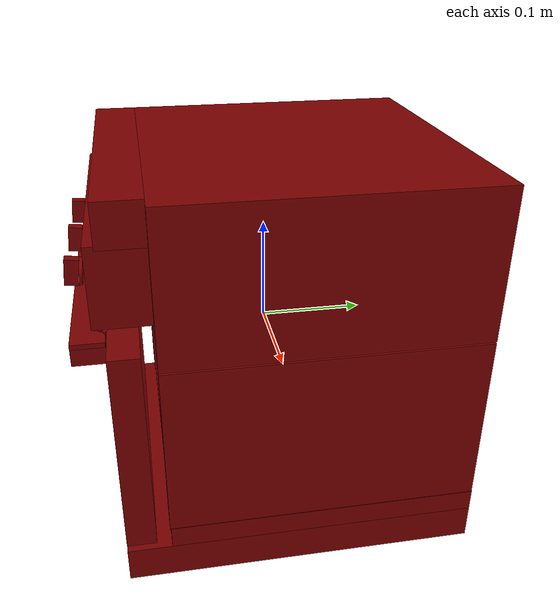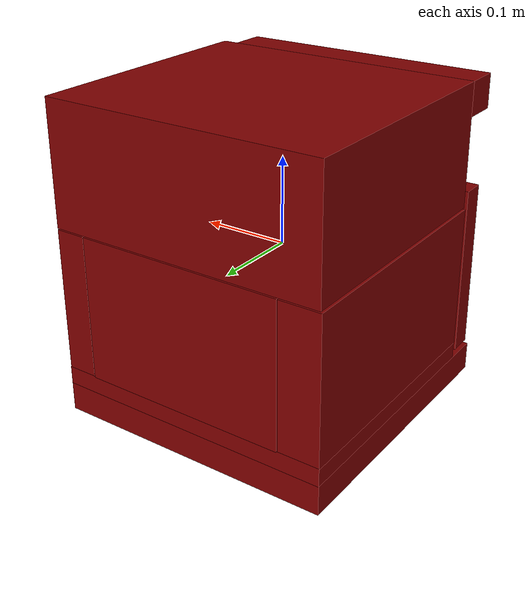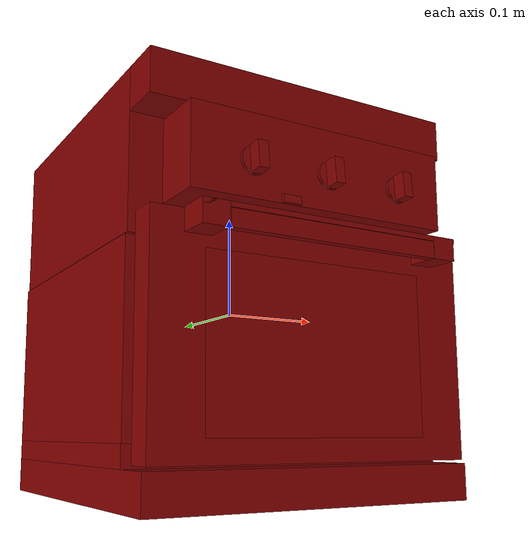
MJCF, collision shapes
<?xml version='1.0' encoding='UTF-8'?>
<mujoco model="model">
  <option timestep="0.002" gravity="0.0 0.0 -9.81"/>
  <compiler angle="radian"/>
  <asset>
    <mesh file="visuals/door.obj" name="door_vis"/>
    <mesh file="visuals/knob_function.obj" name="knob_function_vis"/>
    <mesh file="visuals/knob_temp.obj" name="knob_temp_vis"/>
    <mesh file="visuals/knob_time.obj" name="knob_time_vis"/>
    <mesh file="visuals/Body001.obj" name="Body001_vis"/>
    <mesh file="visuals/Button001.obj" name="Button001_vis"/>
    <mesh file="visuals/tray0.obj" name="tray0_vis"/>
    <mesh file="visuals/tray1.obj" name="tray1_vis"/>
    <mesh file="visuals/window.obj" name="window_vis"/>
    <texture file="visuals/T_BC001.png" name="Body001_material" type="2d"/>
    <material name="Body001_material" rgba="1 1 1 1.0" texture="Body001_material" shininess="0.46335369348526" specular="1"/>
    <texture file="visuals/T_BC001.png" name="door_material" type="2d"/>
    <material name="door_material" rgba="1 1 1 1.0" texture="door_material" shininess="0.46335369348526" specular="1"/>
    <texture file="visuals/T_BC001.png" name="window_material" type="2d"/>
    <material name="window_material" rgba="1 1 1 0.800000011920929" texture="window_material" shininess="0.46335369348526" specular="0.3103448502657381"/>
    <texture file="visuals/T_BC001.png" name="knob_function_material" type="2d"/>
    <material name="knob_function_material" rgba="1 1 1 1.0" texture="knob_function_material" shininess="0.46335369348526" specular="0.3103448502657381"/>
    <texture file="visuals/T_BC001.png" name="knob_temp_material" type="2d"/>
    <material name="knob_temp_material" rgba="1 1 1 1.0" texture="knob_temp_material" shininess="0.46335369348526" specular="0.3103448502657381"/>
    <texture file="visuals/T_BC001.png" name="knob_time_material" type="2d"/>
    <material name="knob_time_material" rgba="1 1 1 1.0" texture="knob_time_material" shininess="0.46335369348526" specular="0.3103448502657381"/>
    <texture file="visuals/T_BC001.png" name="Button001_material" type="2d"/>
    <material name="Button001_material" rgba="1 1 1 1.0" texture="Button001_material" shininess="0.46335369348526" specular="0.3103448502657381"/>
    <texture file="visuals/T_BC001.png" name="tray0_material" type="2d"/>
    <material name="tray0_material" rgba="1 1 1 1.0" texture="tray0_material" shininess="0.46335369348526" specular="2"/>
    <texture file="visuals/T_BC001.png" name="tray1_material" type="2d"/>
    <material name="tray1_material" rgba="1 1 1 1.0" texture="tray1_material" shininess="0.46335369348526" specular="2"/>
  </asset>
  <default>
    <default class="visual">
      <geom conaffinity="0" contype="0" group="1" type="mesh"/>
    </default>
    <default class="collision">
      <geom group="0" rgba="0.5 0 0 0.5"/>
    </default>
    <default class="spawn">
      <geom group="0" rgba="1 1 1 0.5" contype="0" conaffinity="0"/>
      <site group="0" rgba="1 1 1 0.5"/>
    </default>
    <default class="region">
      <geom group="1" conaffinity="0" contype="0" rgba="0 1 0 0"/>
    </default>
  </default>
  <worldbody>
    <body>
      <body name="object">
        <geom mesh="Body001_vis" type="mesh" solimp="0.998 0.998 0.001" solref="0.001 1" friction="0.95 0.3 0.1" class="visual" material="Body001_material"/>
        <geom class="collision" type="box" pos="0.00078029 0.03034528 0.10992454" size="0.16061262786388397 0.14468668401241302 0.07012715935707092" quat="1.0 0.0 0.0 0.0"/>
        <geom class="collision" type="box" pos="-0.13757669 0.03034528 -0.04454038" size="0.023752188310027122 0.14468680322170258 0.08284152299165726" quat="1.0 0.0 0.0 0.0"/>
        <geom class="collision" type="box" pos="0.14396730 0.03034528 -0.04454038" size="0.01742841675877571 0.14468692243099213 0.08284163475036621" quat="1.0 0.0 0.0 0.0"/>
        <geom class="collision" type="box" pos="0.00028833 0.01047281 -0.16351908" size="0.16161368787288666 0.16455745697021484 0.01666220836341381" quat="1.0 0.0 0.0 0.0"/>
        <geom class="collision" type="box" pos="0.00649370 0.14017999 -0.04454038" size="0.11938327550888062 0.034853868186473846 0.08284186571836472" quat="1.0 0.0 0.0 0.0"/>
        <geom class="collision" type="box" pos="0.00054549 -0.13950110 0.10350221" size="0.12980136275291443 0.025302764028310776 0.03628600016236305" quat="1.0 0.0 0.0 0.0"/>
        <geom class="collision" type="box" pos="-0.00815829 -0.13461963 0.16078655" size="0.15167491137981415 0.02042132057249546 0.01926562935113907" quat="1.0 0.0 0.0 0.0"/>
        <geom class="collision" type="box" pos="0.00028833 0.03082720 -0.13647698" size="0.16161461174488068 0.14420557022094727 0.010471759364008904" quat="1.0 0.0 0.0 0.0"/>
        <body name="door">
          <joint axis="1.0 0.0 0.0" pos="0.00000199 -0.15372463 -0.14399529" limited="true" name="door_joint" range="0.0 1.5707963267948966" type="hinge" damping="1" frictionloss="1" armature=".01" stiffness="0.05"/>
          <geom mesh="door_vis" type="mesh" solimp="0.998 0.998 0.001" solref="0.001 1" friction="0.95 0.3 0.1" class="visual" material="door_material"/>
          <geom class="collision" type="box" pos="0.00011840 -0.14062062 -0.04493511" size="0.1581307053565979 0.013554764911532402 0.09866102039813995" quat="1.0 0.0 0.0 0.0" name="door_main"/>
          <geom class="collision" type="box" pos="0.00016541 -0.16957534 0.05221285" size="0.12886156141757965 0.014577762223780155 0.0022435584105551243" quat="1.0 0.0 0.0 0.0" name="door_main_Collider1"/>
          <geom class="collision" type="box" pos="0.00016541 -0.18038807 0.04180697" size="0.1040680930018425 0.0037650971207767725 0.007730062585324049" quat="1.0 0.0 0.0 0.0" name="door_handle_main"/>
          <geom class="collision" type="box" pos="-0.11665465 -0.16940965 0.04426667" size="0.012041750364005566 0.01474347896873951 0.0101897232234478" quat="1.0 0.0 0.0 0.0" name="door_main_Collider2"/>
          <geom class="collision" type="box" pos="0.11645973 -0.16940965 0.04426667" size="0.012041754089295864 0.014743483625352383 0.010189726017415524" quat="1.0 0.0 0.0 0.0" name="door_main_Collider3"/>
          <body name="window">
            <geom mesh="window_vis" type="mesh" solimp="0.998 0.998 0.001" solref="0.001 1" friction="0.95 0.3 0.1" class="visual" material="window_material"/>
            <geom class="collision" type="box" pos="0.00052248 -0.15170745 -0.04956922" size="0.11034322530031204 0.002468056045472622 0.07375499606132507" quat="1.0 0.0 0.0 0.0"/>
          </body>
        </body>
        <body name="knob_function">
          <joint axis="0.0 0.9959583282470703 -0.08981510996818542" pos="0.00002166 -0.17655875 0.09638795" limited="true" name="knob_function_joint" range="0.0 5.410520681182422" type="hinge" damping="0.05" armature="1" frictionloss="0.75"/>
          <geom mesh="knob_function_vis" type="mesh" solimp="0.998 0.998 0.001" solref="0.001 1" friction="0.95 0.3 0.1" class="visual" material="knob_function_material"/>
          <geom class="collision" type="cylinder" pos="0.00005778 -0.17156436 0.09587450" size="0.012114203535020351 0.0014273510314524174" quat="0.7384907603263855 0.674263596534729 0.0 0.0" friction="100 0.5 0.01"/>
          <geom class="collision" type="box" pos="0.00000250 -0.17914841 0.09667914" size="0.004723309073597193 0.006342465057969093 0.011634760536253452" quat="0.9989585280418396 -0.04562760144472122 -0.0 0.0" name="knob_function_main" friction="100 0.5 0.01"/>
        </body>
        <body name="knob_temp">
          <joint axis="0.0 0.9961931109428406 -0.08717270940542221" pos="-0.07522880 -0.17655875 0.09638795" limited="true" name="knob_temp_joint" range="0.0 4.71238898038469" type="hinge" damping="0.05" armature="1" frictionloss="0.75"/>
          <geom mesh="knob_temp_vis" type="mesh" solimp="0.998 0.998 0.001" solref="0.001 1" friction="0.95 0.3 0.1" class="visual" material="knob_temp_material"/>
          <geom class="collision" type="cylinder" pos="-0.07511960 -0.17156044 0.09587414" size="0.012214718386530876 0.0014650241937488317" quat="0.7384907603263855 0.674263596534729 0.0 0.0" friction="100 0.5 0.01"/>
          <geom class="collision" type="box" pos="-0.07507640 -0.17914841 0.09667914" size="0.004723309073597193 0.006342465057969093 0.011634760536253452" quat="0.9989585280418396 -0.04562760144472122 -0.0 0.0" name="knob_temp_main" friction="100 0.5 0.01"/>
        </body>
        <body name="knob_time">
          <joint axis="0.0 0.9960722327232361 -0.08854477107524872" pos="0.07505980 -0.17655875 0.09638795" limited="true" name="knob_time_joint" range="0.0 4.799655442984406" type="hinge" damping="0.05" armature="1" frictionloss="0.75"/>
          <geom mesh="knob_time_vis" type="mesh" solimp="0.998 0.998 0.001" solref="0.001 1" friction="0.95 0.3 0.1" class="visual" material="knob_time_material"/>
          <geom class="collision" type="cylinder" pos="0.07513966 -0.17161981 0.09587954" size="0.012140058912336826 0.0014937188243493438" quat="0.7384907603263855 0.674263596534729 0.0 0.0" friction="100 0.5 0.01"/>
          <geom class="collision" type="box" pos="0.07499157 -0.17914841 0.09667914" size="0.004723309073597193 0.006342465057969093 0.011634760536253452" quat="0.9989585280418396 -0.04562760144472122 -0.0 0.0" name="knob_time_main" friction="100 0.5 0.01"/>
        </body>
        <body name="Button001">
          <joint axis="0.0 0.9974946975708008 -0.07074242830276489" pos="-0.03932423 -0.17125057 0.06900705" limited="true" name="Button001_joint" range="0.0 0.001" type="slide" damping="1" frictionloss="1" armature=".01" stiffness="4" springref="0"/>
          <geom mesh="Button001_vis" type="mesh" solimp="0.998 0.998 0.001" solref="0.001 1" friction="0.95 0.3 0.1" class="visual" material="Button001_material"/>
          <geom class="collision" type="box" pos="-0.03936762 -0.17131779 0.06908934" size="0.008868260309100151 0.0014868775615468621 0.0035575367510318756" quat="0.9989315271377563 -0.04621448367834091 -0.0 0.0"/>
        </body>
        <body name="tray0">
          <geom class="region" name="reg_tray0" type="box" pos="0.006110945 0.0003158849999999949 -0.06361481" size="0.09979643499999999 0.08337826500000001 0.03230869"/>
          <joint axis="0.0 -1.0 0.0" pos="0.00573062 -0.00245265 -0.09740890" limited="true" name="tray0_joint" range="0.0 0.16" type="slide" damping="1" frictionloss="1" armature=".01" stiffness="0.05"/>
          <geom mesh="tray0_vis" type="mesh" solimp="0.998 0.998 0.001" solref="0.001 1" friction="0.95 0.3 0.1" class="visual" material="tray0_material"/>
          <geom class="collision" type="box" pos="0.11749809 -0.00239633 -0.09286333" size="0.006142429541796446 0.10547813028097153 0.004033310804516077" quat="1.0 0.0 0.0 0.0"/>
          <geom class="collision" type="box" pos="0.00564370 0.00119438 -0.09994216" size="0.10874977707862854 0.09062684327363968 0.0030033981893211603" quat="1.0 0.0 0.0 0.0"/>
          <geom class="collision" type="box" pos="-0.10621006 -0.00239633 -0.09286333" size="0.006142433267086744 0.10547823458909988 0.004033314064145088" quat="1.0 0.0 0.0 0.0"/>
          <geom class="collision" type="box" pos="0.00678328 0.09510623 -0.09286333" size="0.11399798840284348 0.006451786030083895 0.004033319652080536" quat="1.0 0.0 0.0 0.0"/>
          <geom class="collision" type="box" pos="0.00678329 -0.09733227 -0.09286333" size="0.11399801820516586 0.010087694972753525 0.004033319652080536" quat="1.0 0.0 0.0 0.0"/>
        </body>
        <body name="tray1">
          <geom class="region" name="reg_tray1" type="box" pos="0.006110945 0.00031593499999999636 0.009766375" size="0.09979643499999999 0.08337826500000001 0.030403815"/>
          <joint axis="0.0 -1.0 0.0" pos="0.00573062 -0.00245265 -0.02214345" limited="true" name="tray1_joint" range="0.0 0.16" type="slide" damping="1" frictionloss="1" armature=".01" stiffness="0.05"/>
          <geom mesh="tray1_vis" type="mesh" solimp="0.998 0.998 0.001" solref="0.001 1" friction="0.95 0.3 0.1" class="visual" material="tray1_material"/>
          <geom class="collision" type="box" pos="0.11749809 -0.00239633 -0.01757246" size="0.006142435595393181 0.10547830164432526 0.004033316392451525" quat="1.0 0.0 0.0 0.0"/>
          <geom class="collision" type="box" pos="0.00564370 0.00119438 -0.02648682" size="0.10874977707862854 0.09062684327363968 0.004838927183300257" quat="1.0 0.0 0.0 0.0"/>
          <geom class="collision" type="box" pos="-0.10621006 -0.00239633 -0.01757246" size="0.006142436992377043 0.10547834634780884 0.004033317789435387" quat="1.0 0.0 0.0 0.0"/>
          <geom class="collision" type="box" pos="0.00678328 0.09510623 -0.01757246" size="0.11399811506271362 0.006451786030083895 0.004033319652080536" quat="1.0 0.0 0.0 0.0"/>
          <geom class="collision" type="box" pos="0.00678329 -0.09733227 -0.01757246" size="0.11399813741445541 0.010087694972753525 0.004033319652080536" quat="1.0 0.0 0.0 0.0"/>
        </body>
        <geom class="region" name="reg_main" type="box" pos="4.1399999999996995e-06 0.014935699999999996 -1.4999999992104662e-08" size="0.1639391 0.17218457 0.183033045"/>
      </body>
    </body>
  </worldbody>
  <actuator>
    <motor name="door_joint_actuator" joint="door_joint" gear="50"/>
    <motor name="knob_function_joint_actuator" joint="knob_function_joint" gear="50"/>
    <motor name="knob_temp_joint_actuator" joint="knob_temp_joint" gear="50"/>
    <motor name="knob_time_joint_actuator" joint="knob_time_joint" gear="50"/>
    <motor name="Button001_joint_actuator" joint="Button001_joint" gear="0.5"/>
    <motor name="tray0_joint_actuator" joint="tray0_joint" gear="0.5"/>
    <motor name="tray1_joint_actuator" joint="tray1_joint" gear="0.5"/>
  </actuator>
</mujoco>
